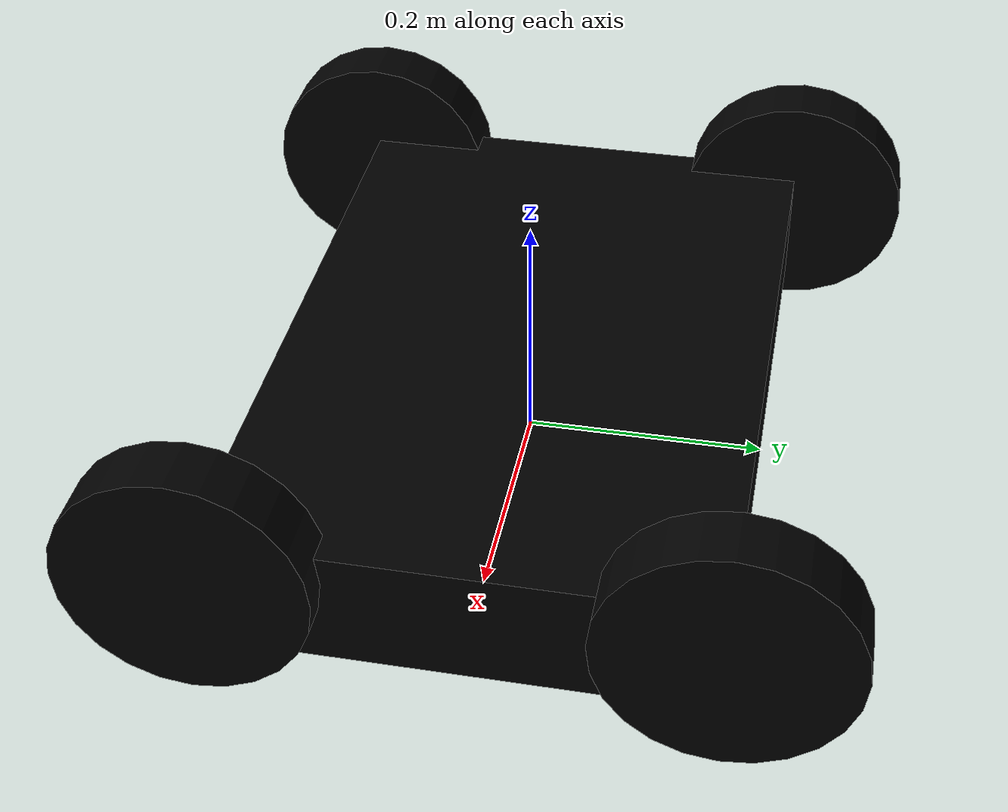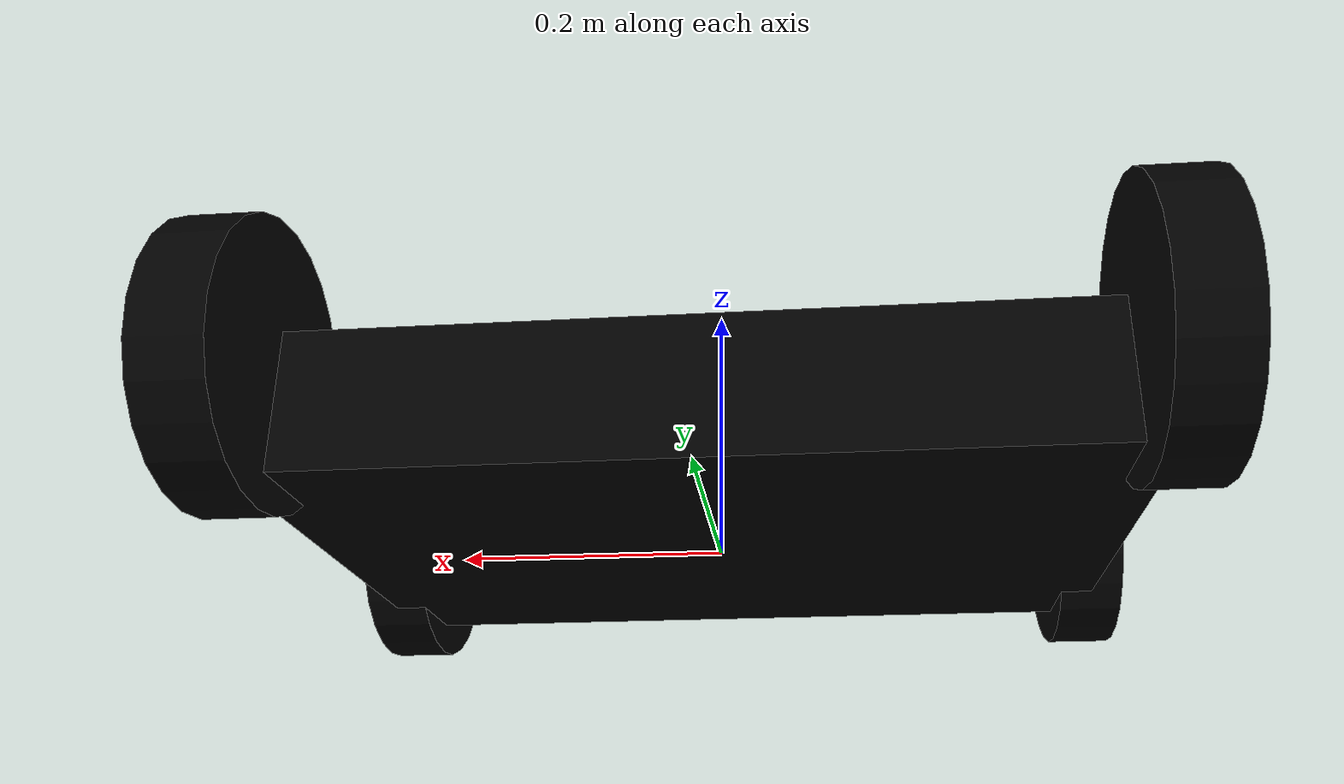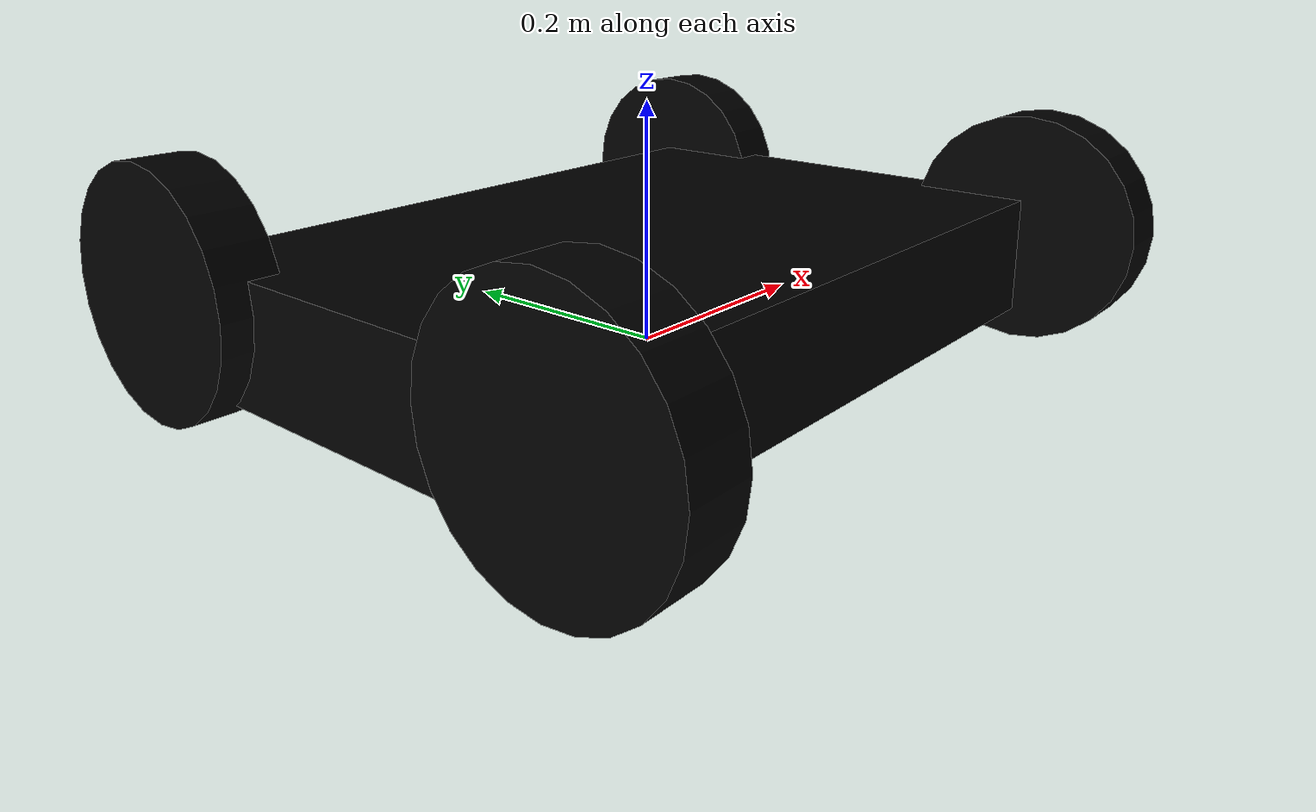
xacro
<?xml version="1.0"?>
<robot name="four_wheel_car" xmlns:xacro="http://ros.org/wiki/xacro">

  <!-- Properties -->
  <xacro:property name="wheel_radius" value="0.1" />
  <xacro:property name="wheel_width" value="0.05" />
  <xacro:property name="base_length" value="0.6" />
  <xacro:property name="base_width" value="0.4" />
  <xacro:property name="wheel_offset" value="0.05" />

  <!-- Materials -->
  <material name="black">
    <color rgba="0.0 0.0 0.0 1.0" />
  </material>

  <!-- Links -->
  <link name="base_link">
    <visual>
      <geometry>
        <box size="0.6 0.4 0.1" />
      </geometry>
      <origin xyz="0 0 0.05" />
      <material name="black" />
    </visual>
    <collision>
      <geometry>
        <box size="0.6 0.4 0.1" />
      </geometry>
      <origin xyz="0 0 0.05" />
    </collision>
    <inertial>
      <mass value="10.0" />
      <origin xyz="0 0 0" />
      <inertia ixx="0.1" ixy="0.0" ixz="0.0" iyy="0.1" iyz="0.0" izz="0.1" />
    </inertial>
  </link>

  <!-- Wheels -->
  <xacro:macro name="wheel" params="name x y z">
    <link name="${name}_link">
      <visual>
        <geometry>
          <cylinder length="${wheel_width}" radius="${wheel_radius}" />
        </geometry>
        <origin xyz="0 0 ${wheel_width / 2}" rpy="0 ${pi / 2} 0" />
        <material name="black" />
      </visual>
      <collision>
        <geometry>
          <cylinder length="${wheel_width}" radius="${wheel_radius}" />
        </geometry>
        <origin xyz="0 0 ${wheel_width / 2}" rpy="0 ${pi / 2} 0" />
      </collision>
      <inertial>
        <mass value="1.0" />
        <origin xyz="0 0 0" />
        <inertia ixx="0.01" ixy="0.0" ixz="0.0" iyy="0.01" iyz="0.0" izz="0.01" />
      </inertial>
    </link>

    <!-- Wheel Joint -->
    <joint name="${name}_steering_joint" type="continuous">
      <parent link="base_link" />
      <child link="${name}_link" />
      <origin xyz="${x} ${y} ${z}" />
      <axis xyz="0 0 1" />
    </joint>

    <joint name="${name}_drive_joint" type="revolute">
      <parent link="${name}_link" />
      <child link="${name}_tire" />
      <origin xyz="0 0 ${wheel_width / 2}" />
      <axis xyz="1 0 0" />
    </joint>

    <link name="${name}_tire">
      <visual>
        <geometry>
          <cylinder length="${wheel_width}" radius="${wheel_radius}" />
        </geometry>
        <origin xyz="0 0 0" rpy="0 ${pi / 2} 0" />
        <material name="black" />
      </visual>
      <collision>
        <geometry>
          <cylinder length="${wheel_width}" radius="${wheel_radius}" />
        </geometry>
        <origin xyz="0 0 0" rpy="0 ${pi / 2} 0" />
      </collision>
    </link>
  </xacro:macro>

  <!-- Front Left Wheel -->
  <xacro:wheel name="front_left" x="${base_length / 2}" y="${base_width / 2}" z="${wheel_offset}" />

  <!-- Front Right Wheel -->
  <xacro:wheel name="front_right" x="${base_length / 2}" y="-${base_width / 2}" z="${wheel_offset}" />

  <!-- Rear Left Wheel -->
  <xacro:wheel name="rear_left" x="-${base_length / 2}" y="${base_width / 2}" z="${wheel_offset}" />

  <!-- Rear Right Wheel -->
  <xacro:wheel name="rear_right" x="-${base_length / 2}" y="-${base_width / 2}" z="${wheel_offset}" />

  <!-- Gazebo Plugins -->
  <gazebo>
    <plugin name="gazebo_ros2_control" filename="libgazebo_ros2_control.so">
      <robotNamespace>/</robotNamespace>
      <controlPeriod>0.01</controlPeriod>
    </plugin>
  </gazebo>

  <gazebo reference="base_link">
    <material>Gazebo/Red</material>
  </gazebo>

  <gazebo reference="front_left_tire">
    <mu1>1.0</mu1>
    <mu2>1.0</mu2>
    <kp>1.0e3</kp>
    <kd>1.0</kd>
  </gazebo>

  <gazebo reference="front_right_tire">
    <mu1>1.0</mu1>
    <mu2>1.0</mu2>
    <kp>1.0e3</kp>
    <kd>1.0</kd>
  </gazebo>

  <gazebo reference="rear_left_tire">
    <mu1>1.0</mu1>
    <mu2>1.0</mu2>
    <kp>1.0e3</kp>
    <kd>1.0</kd>
  </gazebo>

  <gazebo reference="rear_right_tire">
    <mu1>1.0</mu1>
    <mu2>1.0</mu2>
    <kp>1.0e3</kp>
    <kd>1.0</kd>
  </gazebo>

</robot>
